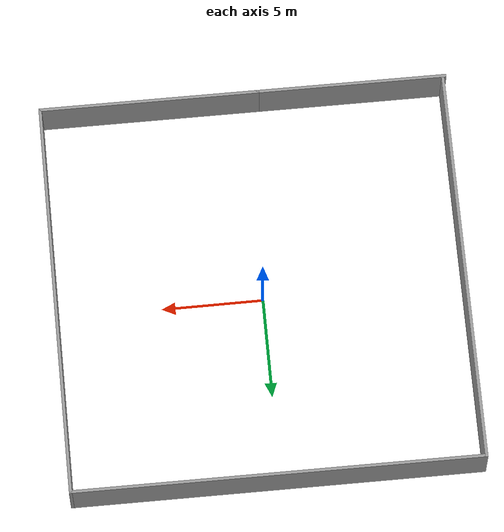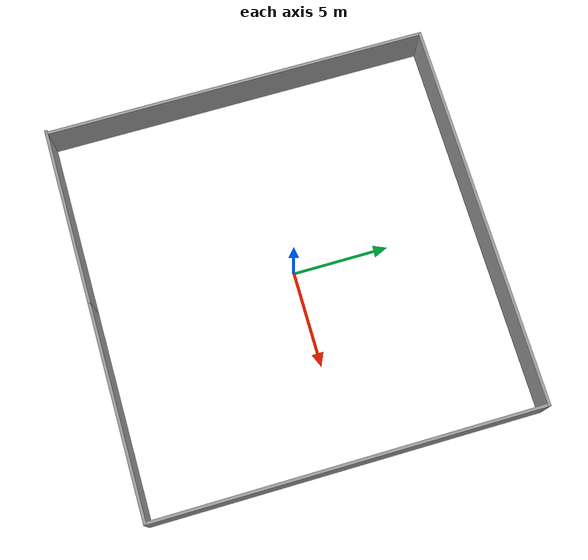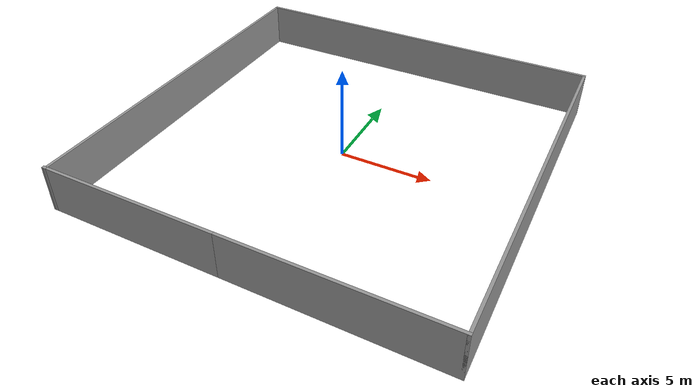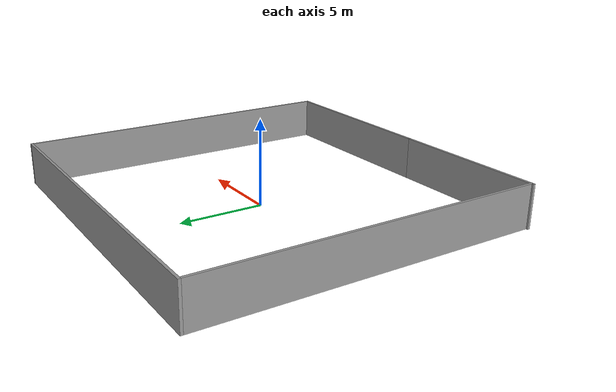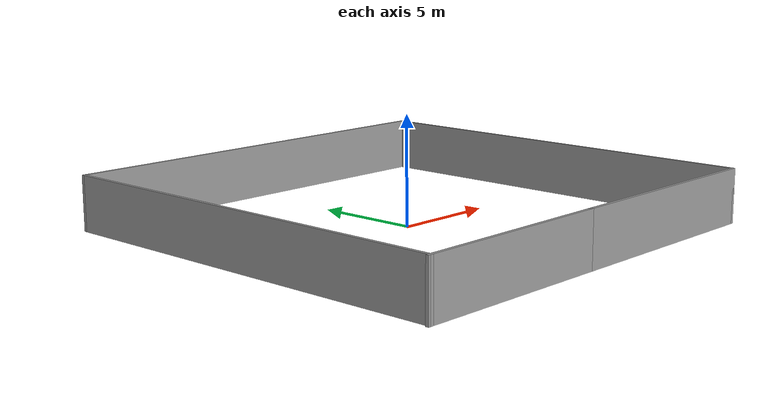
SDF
<?xml version='1.0'?>
<sdf version='1.6'>
  <model name='wall'>
    <pose frame=''>0.067567 -0.22818 0 0 -0 0</pose>
    <link name='Wall_19'>
      <collision name='Wall_19_Collision'>
        <geometry>
          <box>
            <size>9.5 0.15 2.5</size>
          </box>
        </geometry>
        <pose frame=''>0 0 1.25 0 -0 0</pose>
      </collision>
      <visual name='Wall_19_Visual'>
        <pose frame=''>0 0 1.25 0 -0 0</pose>
        <geometry>
          <box>
            <size>9.5 0.15 2.5</size>
          </box>
        </geometry>
        <material>
          <script>
            <uri>file://media/materials/scripts/gazebo.material</uri>
            <name>Gazebo/Grey</name>
          </script>
          <ambient>1 1 1 1</ambient>
        </material>
        <meta>
          <layer>0</layer>
        </meta>
      </visual>
      <pose frame=''>-5.425 -9.925 0 0 -0 3.14159</pose>
    </link>
    <link name='Wall_21'>
      <collision name='Wall_21_Collision'>
        <geometry>
          <box>
            <size>11 0.15 2.5</size>
          </box>
        </geometry>
        <pose frame=''>0 0 1.25 0 -0 0</pose>
      </collision>
      <visual name='Wall_21_Visual'>
        <pose frame=''>0 0 1.25 0 -0 0</pose>
        <geometry>
          <box>
            <size>11 0.15 2.5</size>
          </box>
        </geometry>
        <material>
          <script>
            <uri>file://media/materials/scripts/gazebo.material</uri>
            <name>Gazebo/Grey</name>
          </script>
          <ambient>1 1 1 1</ambient>
        </material>
        <meta>
          <layer>0</layer>
        </meta>
      </visual>
      <pose frame=''>4.675 -9.925 0 0 -0 0</pose>
    </link>
    <link name='Wall_22'>
      <collision name='Wall_22_Collision'>
        <geometry>
          <box>
            <size>20 0.15 2.5</size>
          </box>
        </geometry>
        <pose frame=''>0 0 1.25 0 -0 0</pose>
      </collision>
      <visual name='Wall_22_Visual'>
        <pose frame=''>0 0 1.25 0 -0 0</pose>
        <geometry>
          <box>
            <size>20 0.15 2.5</size>
          </box>
        </geometry>
        <material>
          <script>
            <uri>file://media/materials/scripts/gazebo.material</uri>
            <name>Gazebo/Grey</name>
          </script>
          <ambient>1 1 1 1</ambient>
        </material>
        <meta>
          <layer>0</layer>
        </meta>
      </visual>
      <pose frame=''>10.1 0 0 0 -0 1.5708</pose>
    </link>
    <link name='Wall_23'>
      <collision name='Wall_23_Collision'>
        <geometry>
          <box>
            <size>20.25 0.15 2.5</size>
          </box>
        </geometry>
        <pose frame=''>0 0 1.25 0 -0 0</pose>
      </collision>
      <visual name='Wall_23_Visual'>
        <pose frame=''>0 0 1.25 0 -0 0</pose>
        <geometry>
          <box>
            <size>20.25 0.15 2.5</size>
          </box>
        </geometry>
        <material>
          <script>
            <uri>file://media/materials/scripts/gazebo.material</uri>
            <name>Gazebo/Grey</name>
          </script>
          <ambient>1 1 1 1</ambient>
        </material>
        <meta>
          <layer>0</layer>
        </meta>
      </visual>
      <pose frame=''>0.049999 9.925 0 0 -0 3.14159</pose>
    </link>
    <link name='Wall_24'>
      <collision name='Wall_24_Collision'>
        <geometry>
          <box>
            <size>20 0.15 2.5</size>
          </box>
        </geometry>
        <pose frame=''>0 0 1.25 0 -0 0</pose>
      </collision>
      <visual name='Wall_24_Visual'>
        <pose frame=''>0 0 1.25 0 -0 0</pose>
        <geometry>
          <box>
            <size>20 0.15 2.5</size>
          </box>
        </geometry>
        <material>
          <script>
            <uri>file://media/materials/scripts/gazebo.material</uri>
            <name>Gazebo/Grey</name>
          </script>
          <ambient>1 1 1 1</ambient>
        </material>
        <meta>
          <layer>0</layer>
        </meta>
      </visual>
      <pose frame=''>-10 0 0 0 0 -1.5708</pose>
    </link>
    <static>1</static>
  </model>
</sdf>
